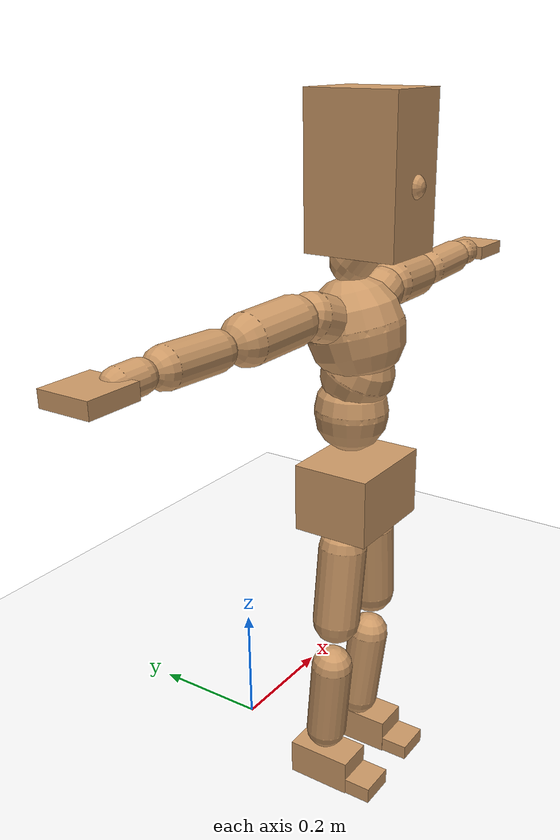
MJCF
<mujoco model="humanoid">
  <option integrator="implicitfast" />

  <visual>
    <global offwidth="1280" offheight="960" />
    <headlight active="1" ambient="0.34 0.34 0.34" diffuse="0.5 0.5 0.5" />
  </visual>

  <default>
    <joint damping="2" stiffness="2" armature="0.01" limited="true" solimplimit="0 .99 .01" />
    <geom condim="1" friction="0.7 0.005 0.0001" solimp=".99 .99 .003" solref="0.015 1" margin="0.001" rgba="0.8 0.6 .4 1" />
    <default class="smplcontact">
      <geom condim="3" friction="1. 0.005 0.0001" solref="0.015 1" solimp="0.98 0.98 0.001" priority="1" />
    </default>
    <default class="stiff_medium">
      <joint stiffness="10" />
    </default>
    <default class="stiff_medium_higher">
      <joint stiffness="50" />
    </default>
    <default class="stiff_high">
      <joint stiffness="100" />
    </default>
  </default>

  <asset>
    <texture type="skybox" builtin="gradient" rgb1="0.99 0.99 0.99" rgb2="0.608 0.828 0.892" width="100" />
    <texture builtin="flat" height="1278" mark="cross" markrgb="1 1 1" name="texgeom" random="0.01" rgb1="0.8 0.6 0.4" rgb2="0.8 0.6 0.4" type="cube" width="127" />
    <texture name="texplane" type="2d" builtin="checker" markrgb="1 1 1" rgb1="0.756 0.772 0.76" rgb2="0.6 0.6 0.6" width="100" height="100" />
    <material name="MatPlane" reflectance="0.5" texture="texplane" texrepeat="1 1" texuniform="true" />
    <material name="geom" texture="texgeom" texuniform="true" />
  </asset>

  <worldbody>
    <light name="tracking_light" pos="0 0 7" dir="0 0 -1" directional="true" cutoff="100" exponent="1" diffuse="1 1 1" specular="0.1 0.1 0.1" mode="trackcom" />
    <camera name="back" pos="0 3 2.4" xyaxes="-1 0 0 0 -1 2" mode="trackcom" />
    <camera name="side" pos="-3 0 2.4" xyaxes="0 -1 0 1 0 2" mode="trackcom" />
    <camera name="front_side" pos="-2.8 -2.8 0.8" xyaxes="0.5 -0.5 0 0.1 0.1 1" mode="trackcom" />
    <geom condim="3" name="floor" pos="0 0 0" rgba="1 1 1 1" size="100 100 .2" type="plane" material="MatPlane" />
    <body name="Pelvis" pos="-0.0018 -0.2233 0.519356" euler="90 0 0">
      <site name="Pelvis" size="0.01" />
      <freejoint name="Pelvis" />
      <geom type="box" pos="-0.0000 -0.0121 -0.0055" size="0.0773575 0.0522471 0.0600624" quat="1.0000 0.0000 0.0000 0.0000" density="3165.830099" name="Pelvis" />
      <body name="L_Hip" pos="0.038331 -0.0504094 -0.00375037">
        <joint name="L_Hip_x" type="hinge" pos="0 0 0" axis="1 0 0" stiffness="10" range="-160.0 22.92" class="stiff_medium" damping="15" />
        <joint name="L_Hip_y" type="hinge" pos="0 0 0" axis="0 1 0" stiffness="10" range="-70.0 70.0" class="stiff_medium" damping="10" />
        <joint name="L_Hip_z" type="hinge" pos="0 0 0" axis="0 0 1" stiffness="10" range="-28.65 90.0" class="stiff_medium" damping="10" />
        <geom type="capsule" density="2040.816327" fromto="0.00380552 -0.0413644 -0.000496372 0.0151118 -0.165568 -0.00198549" size="0.037448" name="L_Hip" />
        <body name="L_Knee" pos="0.0189173 -0.206932 -0.00248186">
          <joint name="L_Knee_x" type="hinge" pos="0 0 0" axis="1 0 0" range="-5.16 171.89" damping="8" />
          <joint name="L_Knee_y" type="hinge" pos="0 0 0" axis="0 1 0" range="-4.58 6.88" damping="8" />
          <joint name="L_Knee_z" type="hinge" pos="0 0 0" axis="0 0 1" range="-6.88 4.58" damping="8" />
          <geom type="capsule" density="1234.567901" fromto="-0.00148912 -0.0439014 -0.00479827 -0.00601162 -0.175606 -0.0193034" size="0.032942" name="L_Knee" />
          <body name="L_Ankle" pos="-0.00750074 -0.219507 -0.0241016">
            <joint name="L_Ankle_x" type="hinge" pos="0 0 0" axis="1 0 0" range="-45.84 45.84" class="stiff_medium" damping="6" />
            <joint name="L_Ankle_y" type="hinge" pos="0 0 0" axis="0 1 0" range="-74.48 22.92" class="stiff_medium" damping="3" />
            <joint name="L_Ankle_z" type="hinge" pos="0 0 0" axis="0 0 1" range="-4.58 4.58" class="stiff_medium" damping="6" />
            <geom type="box" pos="0.0128505 -0.0131814 0.0133469" size="0.0294103 0.0282534 0.0517573" quat="1.0000 0.0000 0.0000 0.0000" density="449.071558" name="L_Ankle" class="smplcontact" />
            <body name="L_Toe" pos="0.0145603 -0.0307751 0.0657969">
              <joint name="L_Toe_x" type="hinge" pos="0 0 0" axis="1 0 0" range="-91.67 22.92" />
              <joint name="L_Toe_y" type="hinge" pos="0 0 0" axis="0 1 0" range="-4.58 4.58" />
              <joint name="L_Toe_z" type="hinge" pos="0 0 0" axis="0 0 1" range="-4.58 4.58" />
              <geom type="box" pos="-0.00165457 0.00303339 0.0136778" size="0.0291059 0.0121782 0.0302019" quat="1.0000 0.0000 0.0000 0.0000" density="423.206892" name="L_Toe" class="smplcontact" />
            </body>
          </body>
        </body>
      </body>
      <body name="R_Hip" pos="-0.0373382 -0.049913 -0.00237156">
        <joint name="R_Hip_x" type="hinge" pos="0 0 0" axis="1 0 0" stiffness="10" range="-160.0 22.92" class="stiff_medium" damping="15" />
        <joint name="R_Hip_y" type="hinge" pos="0 0 0" axis="0 1 0" stiffness="10" range="-70.0 70.0" class="stiff_medium" damping="10" />
        <joint name="R_Hip_z" type="hinge" pos="0 0 0" axis="0 0 1" stiffness="10" range="-90.0 28.65" class="stiff_medium" damping="10" />
        <geom type="capsule" density="2040.816327" fromto="-0.00424674 -0.0421917 -0.000992745 -0.0168767 -0.168822 -0.00391583" size="0.0368999" name="R_Hip" />
        <body name="R_Knee" pos="-0.0211234 -0.211013 -0.00490857">
          <joint name="R_Knee_x" type="hinge" pos="0 0 0" axis="1 0 0" range="-5.16 171.89" damping="8" />
          <joint name="R_Knee_y" type="hinge" pos="0 0 0" axis="0 1 0" range="-6.88 4.58" damping="8" />
          <joint name="R_Knee_z" type="hinge" pos="0 0 0" axis="0 0 1" range="-4.58 6.88" damping="8" />
          <geom type="capsule" density="1234.567901" fromto="0.00176488 -0.0439565 -0.00468796 0.00694921 -0.175771 -0.0186415" size="0.032942" name="R_Knee" />
          <body name="R_Ankle" pos="0.00871409 -0.219728 -0.0233295">
            <joint name="R_Ankle_x" type="hinge" pos="0 0 0" axis="1 0 0" range="-45.84 45.84" class="stiff_medium" damping="6" />
            <joint name="R_Ankle_y" type="hinge" pos="0 0 0" axis="0 1 0" range="-22.92 74.48" class="stiff_medium" damping="3" />
            <joint name="R_Ankle_z" type="hinge" pos="0 0 0" axis="0 0 1" range="-4.58 4.58" class="stiff_medium" damping="6" />
            <geom type="box" pos="-0.0116923 -0.00959653 0.014119" size="0.0294103 0.0291059 0.0526707" quat="1.0000 0.0000 0.0000 0.0000" density="434.700981" name="R_Ankle" class="smplcontact" />
            <body name="R_Toe" pos="-0.0140087 -0.0265284 0.068003">
              <joint name="R_Toe_x" type="hinge" pos="0 0 0" axis="1 0 0" range="-91.67 22.92" />
              <joint name="R_Toe_y" type="hinge" pos="0 0 0" axis="0 1 0" range="-4.58 4.58" />
              <joint name="R_Toe_z" type="hinge" pos="0 0 0" axis="0 0 1" range="-4.58 4.58" />
              <geom type="box" pos="0.0023164 0.00248186 0.0125196" size="0.0291668 0.0131525 0.0300193" quat="1.0000 0.0000 0.0000 0.0000" density="407.384095" name="R_Toe" class="smplcontact" />
            </body>
          </body>
        </body>
      </body>
      <body name="Torso" pos="-0.00158384 0.0690555 -0.0169154">
        <joint name="Torso_x" type="hinge" pos="0 0 0" axis="1 0 0" range="-25.78 57.3" class="stiff_medium" damping="15" />
        <joint name="Torso_y" type="hinge" pos="0 0 0" axis="0 1 0" range="-57.3 57.3" class="stiff_high" damping="20" />
        <joint name="Torso_z" type="hinge" pos="0 0 0" axis="0 0 1" range="-34.38 34.38" class="stiff_high" damping="20" />
        <geom type="capsule" density="2040.816327" fromto="0.00158384 0.038519 0.000316768 0.00190061 0.0470718 0.000380122" size="0.0556482" name="Torso" />
        <body name="Spine" pos="0.00348445 0.0856541 0.00069689">
          <joint name="Spine_x" type="hinge" pos="0 0 0" axis="1 0 0" stiffness="10" range="-25.78 57.3" class="stiff_medium" damping="15" />
          <joint name="Spine_y" type="hinge" pos="0 0 0" axis="0 1 0" stiffness="10" range="-57.3 57.3" class="stiff_high" damping="8" />
          <joint name="Spine_z" type="hinge" pos="0 0 0" axis="0 0 1" stiffness="20" range="-34.38 34.38" class="stiff_high" damping="12" />
          <geom type="capsule" density="2040.816327" fromto="0.000443476 0.0150782 0.00722232 0.000506829 0.0184359 0.00886951" size="0.0546351" name="Spine" />
          <body name="Chest" pos="0.000950305 0.0335141 0.0160918">
            <joint name="Chest_x" type="hinge" pos="0 0 0" axis="1 0 0" stiffness="10" range="-25.78 57.3" class="stiff_medium" damping="15" />
            <joint name="Chest_y" type="hinge" pos="0 0 0" axis="0 1 0" stiffness="10" range="-57.3 57.3" class="stiff_high" damping="8" />
            <joint name="Chest_z" type="hinge" pos="0 0 0" axis="0 0 1" stiffness="20" range="-34.38 34.38" class="stiff_high" damping="12" />
            <geom type="capsule" density="2040.816327" fromto="-0.000570183 0.0432072 -0.0109602 -0.000633536 0.0527736 -0.013431" size="0.0725091" name="Chest" />
            <body name="Neck" pos="-0.0017739 0.135513 -0.0271787">
              <joint name="Neck_x" type="hinge" pos="0 0 0" axis="1 0 0" range="-28.65 57.3" class="stiff_medium_higher" damping="10" />
              <joint name="Neck_y" type="hinge" pos="0 0 0" axis="0 1 0" range="-40.11 40.11" class="stiff_medium_higher" damping="10" />
              <joint name="Neck_z" type="hinge" pos="0 0 0" axis="0 0 1" range="-40.11 40.11" class="stiff_medium_higher" damping="10" />
              <geom type="capsule" density="1000" fromto="0.000633536 0.00823597 0.00652543 0.0025975 0.0329439 0.0260383" size="0.0315509" name="Neck" />
              <body name="Head" pos="0.00441481 0.0551851 0.0435538">
                <joint name="Head_x" type="hinge" pos="0 0 0" axis="1 0 0" range="-28.65 57.3" class="stiff_medium_higher" damping="2" />
                <joint name="Head_y" type="hinge" pos="0 0 0" axis="0 1 0" range="-40.11 40.11" class="stiff_medium_higher" damping="2" />
                <joint name="Head_z" type="hinge" pos="0 0 0" axis="0 0 1" range="-40.11 40.11" class="stiff_medium_higher" damping="2" />
                <geom type="box" pos="-0.0035658 0.0743725 -0.00984841" size="0.0555297 0.105745 0.0696412" quat="1.0000 0.0000 0.0000 0.0000" density="1018.069894" name="Head" />
                <geom type="capsule" name="nose" size="0.0183266 0.00916331" pos="0 0.0594301 0.0424501" quat="1 0 0 0" mass="0" contype="0" conaffinity="0" />
              </body>
            </body>
            <body name="L_Thorax" pos="0.0460261 0.0710835 -0.0199174">
              <joint name="L_Thorax_x" type="hinge" pos="0 0 0" axis="1 0 0" range="-10.89 4.58" class="stiff_medium_higher" damping="20" />
              <joint name="L_Thorax_y" type="hinge" pos="0 0 0" axis="0 1 0" range="-28.65 17.19" class="stiff_medium_higher" damping="20" />
              <joint name="L_Thorax_z" type="hinge" pos="0 0 0" axis="0 0 1" range="-31.51 40.11" class="stiff_medium_higher" damping="20" />
              <geom type="capsule" density="1000" fromto="0.0106304 0.00356294 -0.00105136 0.0425216 0.0142517 -0.00414702" size="0.0351553" name="L_Thorax" />
              <body name="L_Shoulder" pos="0.053152 0.0178147 -0.00519838">
                <joint name="L_Shoulder_x" type="hinge" pos="0 0 0" axis="1 0 0" range="-97.4 97.4" class="stiff_medium" damping="6" />
                <joint name="L_Shoulder_y" type="hinge" pos="0 0 0" axis="0 1 0" range="-108.86 80.21" class="stiff_medium" damping="6" />
                <joint name="L_Shoulder_z" type="hinge" pos="0 0 0" axis="0 0 1" range="-97.4 85.94" class="stiff_medium" damping="6" />
                <geom type="capsule" density="1000" fromto="0.0303142 -0.00151863 -0.00321248 0.121315 -0.0059577 -0.0128499" size="0.0348854" name="L_Shoulder" />
                <body name="L_Elbow" pos="0.151629 -0.00747632 -0.0160624">
                  <joint name="L_Elbow_x" type="hinge" pos="0 0 0" axis="1 0 0" range="-17.19 4.58" damping="5" />
                  <joint name="L_Elbow_y" type="hinge" pos="0 0 0" axis="0 1 0" range="-180.0 17.19" damping="5" />
                  <joint name="L_Elbow_z" type="hinge" pos="0 0 0" axis="0 0 1" range="-100.84 4.58" damping="5" />
                  <geom type="capsule" density="1000" fromto="0.0290876 0.00105136 -0.000116818 0.116467 0.00420543 -0.000525679" size="0.027328" name="L_Elbow" />
                  <body name="L_Wrist" pos="0.145555 0.00525679 -0.000700905">
                    <joint name="L_Wrist_x" type="hinge" pos="0 0 0" axis="1 0 0" range="-180.0 22.92" />
                    <joint name="L_Wrist_y" type="hinge" pos="0 0 0" axis="0 1 0" range="-17.19 17.19" />
                    <joint name="L_Wrist_z" type="hinge" pos="0 0 0" axis="0 0 1" range="-22.92 22.92" />
                    <geom type="capsule" density="1000" fromto="0.00981268 -0.000934541 -0.00175226 0.0392507 -0.00379657 -0.00700905" size="0.0214576" name="L_Wrist" class="smplcontact" />
                    <body name="L_Hand" pos="0.0490634 -0.00478952 -0.00870291">
                      <joint name="L_Hand_x" type="hinge" pos="0 0 0" axis="1 0 0" range="-17.19 17.19" />
                      <joint name="L_Hand_y" type="hinge" pos="0 0 0" axis="0 1 0" range="-51.57 51.57" />
                      <joint name="L_Hand_z" type="hinge" pos="0 0 0" axis="0 0 1" range="-91.67 91.67" />
                      <geom type="box" pos="0.0287955 0.000584088 -0.00338771" size="0.0394738 0.0106613 0.0363024" quat="1.0000 0.0000 0.0000 0.0000" density="400.552564" name="L_Hand" class="smplcontact" />
                    </body>
                  </body>
                </body>
              </body>
            </body>
            <body name="R_Thorax" pos="-0.0477784 0.0693896 -0.0225458">
              <joint name="R_Thorax_x" type="hinge" pos="0 0 0" axis="1 0 0" range="-10.89 4.58" class="stiff_medium_higher" damping="20" />
              <joint name="R_Thorax_y" type="hinge" pos="0 0 0" axis="0 1 0" range="-17.19 28.65" class="stiff_medium_higher" damping="20" />
              <joint name="R_Thorax_z" type="hinge" pos="0 0 0" axis="0 0 1" range="-40.11 31.51" class="stiff_medium_higher" damping="20" />
              <geom type="capsule" density="1000" fromto="-0.0112145 0.00379657 -0.00105136 -0.0448579 0.0151863 -0.00426384" size="0.0344805" name="R_Thorax" />
              <body name="R_Shoulder" pos="-0.0560724 0.0190413 -0.0053152">
                <joint name="R_Shoulder_x" type="hinge" pos="0 0 0" axis="1 0 0" range="-97.4 97.4" class="stiff_medium" damping="6" />
                <joint name="R_Shoulder_y" type="hinge" pos="0 0 0" axis="0 1 0" range="-80.21 108.86" class="stiff_medium" damping="6" />
                <joint name="R_Shoulder_z" type="hinge" pos="0 0 0" axis="0 0 1" range="-85.94 97.4" class="stiff_medium" damping="6" />
                <geom type="capsule" density="1000" fromto="-0.0296133 -0.00157704 -0.00251158 -0.11857 -0.00624974 -0.0099879" size="0.0358301" name="R_Shoulder" />
                <body name="R_Elbow" pos="-0.148183 -0.00776837 -0.0124995">
                  <joint name="R_Elbow_x" type="hinge" pos="0 0 0" axis="1 0 0" range="-17.19 4.58" damping="5" />
                  <joint name="R_Elbow_y" type="hinge" pos="0 0 0" axis="0 1 0" range="-17.19 180.0" damping="5" />
                  <joint name="R_Elbow_z" type="hinge" pos="0 0 0" axis="0 0 1" range="-4.58 100.84" damping="5" />
                  <geom type="capsule" density="1000" fromto="-0.0298469 0.000934541 -0.000642497 -0.119271 0.00362134 -0.00256999" size="0.0275305" name="R_Elbow" />
                  <body name="R_Wrist" pos="-0.149118 0.00455589 -0.00327089">
                    <joint name="R_Wrist_x" type="hinge" pos="0 0 0" axis="1 0 0" range="-180.0 22.92" />
                    <joint name="R_Wrist_y" type="hinge" pos="0 0 0" axis="0 1 0" range="-17.19 17.19" />
                    <joint name="R_Wrist_z" type="hinge" pos="0 0 0" axis="0 0 1" range="-22.92 22.92" />
                    <geom type="capsule" density="1000" fromto="-0.00987109 -0.000700905 -0.00122658 -0.0395427 -0.00286203 -0.00484793" size="0.0219974" name="R_Wrist" class="smplcontact" />
                    <body name="R_Hand" pos="-0.0494138 -0.00356294 -0.00601611">
                      <joint name="R_Hand_x" type="hinge" pos="0 0 0" axis="1 0 0" range="-17.19 17.19" />
                      <joint name="R_Hand_y" type="hinge" pos="0 0 0" axis="0 1 0" range="-51.57 51.57" />
                      <joint name="R_Hand_z" type="hinge" pos="0 0 0" axis="0 0 1" range="-91.67 91.67" />
                      <geom type="box" pos="-0.0269849 -0.000525679 -0.00461429" size="0.0383942 0.0110662 0.0368422" quat="1.0000 0.0000 0.0000 0.0000" density="403.679611" name="R_Hand" class="smplcontact" />
                    </body>
                  </body>
                </body>
              </body>
            </body>
          </body>
        </body>
      </body>
    </body>
  </worldbody>
  <actuator>
    <general name="L_Hip_x" joint="L_Hip_x" biastype="affine" gainprm="287.33006409732246" biasprm="-215.3247604770444 -180 -2.0" ctrllimited="true" ctrlrange="-1 1" forcerange="-360 360" />
    <general name="L_Hip_y" joint="L_Hip_y" biastype="affine" gainprm="219.9114857512855" biasprm="0.0 -180 -2.0" ctrllimited="true" ctrlrange="-1 1" forcerange="-360 360" />
    <general name="L_Hip_z" joint="L_Hip_z" biastype="affine" gainprm="186.3749841742145" biasprm="96.3683546488669 -180 -2.0" ctrllimited="true" ctrlrange="-1 1" forcerange="-360 360" />
    <general name="L_Knee_x" joint="L_Knee_x" biastype="affine" gainprm="278.10948965903646" biasprm="261.8988715665131 -180 -2.0" ctrllimited="true" ctrlrange="-1 1" forcerange="-360 360" />
    <general name="L_Knee_y" joint="L_Knee_y" biastype="affine" gainprm="18.001325905069514" biasprm="3.612831551628262 -180 -2.0" ctrllimited="true" ctrlrange="-1 1" forcerange="-360 360" />
    <general name="L_Knee_z" joint="L_Knee_z" biastype="affine" gainprm="18.001325905069514" biasprm="-3.612831551628262 -180 -2.0" ctrllimited="true" ctrlrange="-1 1" forcerange="-360 360" />
    <general name="L_Ankle_x" joint="L_Ankle_x" biastype="affine" gainprm="72.00530362027807" biasprm="0.0 -90 -2.0" ctrllimited="true" ctrlrange="-1 1" forcerange="-180 180" />
    <general name="L_Ankle_y" joint="L_Ankle_y" biastype="affine" gainprm="76.49778111491148" biasprm="-40.49512930477244 -90 -2.0" ctrllimited="true" ctrlrange="-1 1" forcerange="-180 180" />
    <general name="L_Ankle_z" joint="L_Ankle_z" biastype="affine" gainprm="7.1942471767206255" biasprm="0.0 -90 -2.0" ctrllimited="true" ctrlrange="-1 1" forcerange="-180 180" />
    <general name="L_Toe_x" joint="L_Toe_x" biastype="affine" gainprm="71.99902043497087" biasprm="-43.19689898685965 -72 -0.8" ctrllimited="true" ctrlrange="-1 1" forcerange="-144 144" />
    <general name="L_Toe_y" joint="L_Toe_y" biastype="affine" gainprm="5.755397741376501" biasprm="0.0 -72 -0.8" ctrllimited="true" ctrlrange="-1 1" forcerange="-144 144" />
    <general name="L_Toe_z" joint="L_Toe_z" biastype="affine" gainprm="5.755397741376501" biasprm="0.0 -72 -0.8" ctrllimited="true" ctrlrange="-1 1" forcerange="-144 144" />
    <general name="R_Hip_x" joint="R_Hip_x" biastype="affine" gainprm="287.33006409732246" biasprm="-215.3247604770444 -180 -2.0" ctrllimited="true" ctrlrange="-1 1" forcerange="-360 360" />
    <general name="R_Hip_y" joint="R_Hip_y" biastype="affine" gainprm="219.9114857512855" biasprm="0.0 -180 -2.0" ctrllimited="true" ctrlrange="-1 1" forcerange="-360 360" />
    <general name="R_Hip_z" joint="R_Hip_z" biastype="affine" gainprm="186.3749841742145" biasprm="-96.3683546488669 -180 -2.0" ctrllimited="true" ctrlrange="-1 1" forcerange="-360 360" />
    <general name="R_Knee_x" joint="R_Knee_x" biastype="affine" gainprm="278.10948965903646" biasprm="261.8988715665131 -180 -2.0" ctrllimited="true" ctrlrange="-1 1" forcerange="-360 360" />
    <general name="R_Knee_y" joint="R_Knee_y" biastype="affine" gainprm="18.001325905069514" biasprm="-3.612831551628262 -180 -2.0" ctrllimited="true" ctrlrange="-1 1" forcerange="-360 360" />
    <general name="R_Knee_z" joint="R_Knee_z" biastype="affine" gainprm="18.001325905069514" biasprm="3.612831551628262 -180 -2.0" ctrllimited="true" ctrlrange="-1 1" forcerange="-360 360" />
    <general name="R_Ankle_x" joint="R_Ankle_x" biastype="affine" gainprm="72.00530362027807" biasprm="0.0 -90 -2.0" ctrllimited="true" ctrlrange="-1 1" forcerange="-180 180" />
    <general name="R_Ankle_y" joint="R_Ankle_y" biastype="affine" gainprm="76.49778111491148" biasprm="40.49512930477244 -90 -2.0" ctrllimited="true" ctrlrange="-1 1" forcerange="-180 180" />
    <general name="R_Ankle_z" joint="R_Ankle_z" biastype="affine" gainprm="7.1942471767206255" biasprm="0.0 -90 -2.0" ctrllimited="true" ctrlrange="-1 1" forcerange="-180 180" />
    <general name="R_Toe_x" joint="R_Toe_x" biastype="affine" gainprm="71.99902043497087" biasprm="-43.19689898685965 -72 -0.8" ctrllimited="true" ctrlrange="-1 1" forcerange="-144 144" />
    <general name="R_Toe_y" joint="R_Toe_y" biastype="affine" gainprm="5.755397741376501" biasprm="0.0 -72 -0.8" ctrllimited="true" ctrlrange="-1 1" forcerange="-144 144" />
    <general name="R_Toe_z" joint="R_Toe_z" biastype="affine" gainprm="5.755397741376501" biasprm="0.0 -72 -0.8" ctrllimited="true" ctrlrange="-1 1" forcerange="-144 144" />
    <general name="Torso_x" joint="Torso_x" biastype="affine" gainprm="174.00234510682668" biasprm="66.0153336274335 -240 -4.0" ctrllimited="true" ctrlrange="-1 1" forcerange="-360 360" />
    <general name="Torso_y" joint="Torso_y" biastype="affine" gainprm="240.0176787342602" biasprm="0.0 -240 -4.0" ctrllimited="true" ctrlrange="-1 1" forcerange="-360 360" />
    <general name="Torso_z" joint="Torso_z" biastype="affine" gainprm="144.01060724055614" biasprm="0.0 -240 -4.0" ctrllimited="true" ctrlrange="-1 1" forcerange="-360 360" />
    <general name="Spine_x" joint="Spine_x" biastype="affine" gainprm="174.00234510682668" biasprm="66.0153336274335 -240 -4.0" ctrllimited="true" ctrlrange="-1 1" forcerange="-360 360" />
    <general name="Spine_y" joint="Spine_y" biastype="affine" gainprm="240.0176787342602" biasprm="0.0 -240 -4.0" ctrllimited="true" ctrlrange="-1 1" forcerange="-360 360" />
    <general name="Spine_z" joint="Spine_z" biastype="affine" gainprm="144.01060724055614" biasprm="0.0 -240 -4.0" ctrllimited="true" ctrlrange="-1 1" forcerange="-360 360" />
    <general name="Chest_x" joint="Chest_x" biastype="affine" gainprm="174.00234510682668" biasprm="66.0153336274335 -240 -4.0" ctrllimited="true" ctrlrange="-1 1" forcerange="-360 360" />
    <general name="Chest_y" joint="Chest_y" biastype="affine" gainprm="240.0176787342602" biasprm="0.0 -240 -4.0" ctrllimited="true" ctrlrange="-1 1" forcerange="-360 360" />
    <general name="Chest_z" joint="Chest_z" biastype="affine" gainprm="144.01060724055614" biasprm="0.0 -240 -4.0" ctrllimited="true" ctrlrange="-1 1" forcerange="-360 360" />
    <general name="Neck_x" joint="Neck_x" biastype="affine" gainprm="27.00198885760427" biasprm="9.000662952534757 -36 -0.8" ctrllimited="true" ctrlrange="-1 1" forcerange="-72 72" />
    <general name="Neck_y" joint="Neck_y" biastype="affine" gainprm="25.20185626709732" biasprm="0.0 -36 -0.8" ctrllimited="true" ctrlrange="-1 1" forcerange="-72 72" />
    <general name="Neck_z" joint="Neck_z" biastype="affine" gainprm="25.20185626709732" biasprm="0.0 -36 -0.8" ctrllimited="true" ctrlrange="-1 1" forcerange="-72 72" />
    <general name="Head_x" joint="Head_x" biastype="affine" gainprm="18.001325905069514" biasprm="6.000441968356505 -24 -0.8" ctrllimited="true" ctrlrange="-1 1" forcerange="-48 48" />
    <general name="Head_y" joint="Head_y" biastype="affine" gainprm="16.801237511398213" biasprm="0.0 -24 -0.8" ctrllimited="true" ctrlrange="-1 1" forcerange="-48 48" />
    <general name="Head_z" joint="Head_z" biastype="affine" gainprm="16.801237511398213" biasprm="0.0 -24 -0.8" ctrllimited="true" ctrlrange="-1 1" forcerange="-48 48" />
    <general name="L_Thorax_x" joint="L_Thorax_x" biastype="affine" gainprm="16.200146117011364" biasprm="-6.6078165480505335 -120 -1.6" ctrllimited="true" ctrlrange="-1 1" forcerange="-240 240" />
    <general name="L_Thorax_y" joint="L_Thorax_y" biastype="affine" gainprm="48.00353574685204" biasprm="-12.00088393671301 -120 -1.6" ctrllimited="true" ctrlrange="-1 1" forcerange="-240 240" />
    <general name="L_Thorax_z" joint="L_Thorax_z" biastype="affine" gainprm="75.00028861670033" biasprm="9.00589894029074 -120 -1.6" ctrllimited="true" ctrlrange="-1 1" forcerange="-240 240" />
    <general name="L_Shoulder_x" joint="L_Shoulder_x" biastype="affine" gainprm="81.5976331892389" biasprm="0.0 -48 -1.6" ctrllimited="true" ctrlrange="-1 1" forcerange="-96 96" />
    <general name="L_Shoulder_y" joint="L_Shoulder_y" biastype="affine" gainprm="79.19745640189629" biasprm="-12.00088393671301 -48 -1.6" ctrllimited="true" ctrlrange="-1 1" forcerange="-96 96" />
    <general name="L_Shoulder_z" joint="L_Shoulder_z" biastype="affine" gainprm="76.79727961455369" biasprm="-4.800353574685214 -48 -1.6" ctrllimited="true" ctrlrange="-1 1" forcerange="-96 96" />
    <general name="L_Elbow_x" joint="L_Elbow_x" biastype="affine" gainprm="13.67849441372996" biasprm="-7.923096672353461 -72 -0.8" ctrllimited="true" ctrlrange="-1 1" forcerange="-144 144" />
    <general name="L_Elbow_y" joint="L_Elbow_y" biastype="affine" gainprm="123.89813107227425" biasprm="-102.29653998619085 -72 -0.8" ctrllimited="true" ctrlrange="-1 1" forcerange="-144 144" />
    <general name="L_Elbow_z" joint="L_Elbow_z" biastype="affine" gainprm="66.23733950828719" biasprm="-60.4819417669107 -72 -0.8" ctrllimited="true" ctrlrange="-1 1" forcerange="-144 144" />
    <general name="L_Wrist_x" joint="L_Wrist_x" biastype="affine" gainprm="21.24973270888136" biasprm="-16.449379134196157 -12 -0.8" ctrllimited="true" ctrlrange="-1 1" forcerange="-24 24" />
    <general name="L_Wrist_y" joint="L_Wrist_y" biastype="affine" gainprm="3.6002651810139037" biasprm="0.0 -12 -0.8" ctrllimited="true" ctrlrange="-1 1" forcerange="-24 24" />
    <general name="L_Wrist_z" joint="L_Wrist_z" biastype="affine" gainprm="4.800353574685205" biasprm="0.0 -12 -0.8" ctrllimited="true" ctrlrange="-1 1" forcerange="-24 24" />
    <general name="L_Hand_x" joint="L_Hand_x" biastype="affine" gainprm="3.6002651810139037" biasprm="0.0 -12 -0.8" ctrllimited="true" ctrlrange="-1 1" forcerange="-24 24" />
    <general name="L_Hand_y" joint="L_Hand_y" biastype="affine" gainprm="10.800795543041708" biasprm="0.0 -12 -0.8" ctrllimited="true" ctrlrange="-1 1" forcerange="-24 24" />
    <general name="L_Hand_z" joint="L_Hand_z" biastype="affine" gainprm="19.199319903638422" biasprm="0.0 -12 -0.8" ctrllimited="true" ctrlrange="-1 1" forcerange="-24 24" />
    <general name="R_Thorax_x" joint="R_Thorax_x" biastype="affine" gainprm="16.200146117011364" biasprm="-6.6078165480505335 -120 -1.6" ctrllimited="true" ctrlrange="-1 1" forcerange="-240 240" />
    <general name="R_Thorax_y" joint="R_Thorax_y" biastype="affine" gainprm="48.00353574685204" biasprm="12.000883936713002 -120 -1.6" ctrllimited="true" ctrlrange="-1 1" forcerange="-240 240" />
    <general name="R_Thorax_z" joint="R_Thorax_z" biastype="affine" gainprm="75.00028861670033" biasprm="-9.00589894029074 -120 -1.6" ctrllimited="true" ctrlrange="-1 1" forcerange="-240 240" />
    <general name="R_Shoulder_x" joint="R_Shoulder_x" biastype="affine" gainprm="81.5976331892389" biasprm="0.0 -48 -1.6" ctrllimited="true" ctrlrange="-1 1" forcerange="-96 96" />
    <general name="R_Shoulder_y" joint="R_Shoulder_y" biastype="affine" gainprm="79.19745640189629" biasprm="12.00088393671301 -48 -1.6" ctrllimited="true" ctrlrange="-1 1" forcerange="-96 96" />
    <general name="R_Shoulder_z" joint="R_Shoulder_z" biastype="affine" gainprm="76.79727961455369" biasprm="4.800353574685204 -48 -1.6" ctrllimited="true" ctrlrange="-1 1" forcerange="-96 96" />
    <general name="R_Elbow_x" joint="R_Elbow_x" biastype="affine" gainprm="13.67849441372996" biasprm="-7.923096672353461 -72 -0.8" ctrllimited="true" ctrlrange="-1 1" forcerange="-144 144" />
    <general name="R_Elbow_y" joint="R_Elbow_y" biastype="affine" gainprm="123.89813107227425" biasprm="102.29653998619085 -72 -0.8" ctrllimited="true" ctrlrange="-1 1" forcerange="-144 144" />
    <general name="R_Elbow_z" joint="R_Elbow_z" biastype="affine" gainprm="66.23733950828719" biasprm="60.481941766910694 -72 -0.8" ctrllimited="true" ctrlrange="-1 1" forcerange="-144 144" />
    <general name="R_Wrist_x" joint="R_Wrist_x" biastype="affine" gainprm="21.24973270888136" biasprm="-16.449379134196157 -12 -0.8" ctrllimited="true" ctrlrange="-1 1" forcerange="-24 24" />
    <general name="R_Wrist_y" joint="R_Wrist_y" biastype="affine" gainprm="3.6002651810139037" biasprm="0.0 -12 -0.8" ctrllimited="true" ctrlrange="-1 1" forcerange="-24 24" />
    <general name="R_Wrist_z" joint="R_Wrist_z" biastype="affine" gainprm="4.800353574685205" biasprm="0.0 -12 -0.8" ctrllimited="true" ctrlrange="-1 1" forcerange="-24 24" />
    <general name="R_Hand_x" joint="R_Hand_x" biastype="affine" gainprm="3.6002651810139037" biasprm="0.0 -12 -0.8" ctrllimited="true" ctrlrange="-1 1" forcerange="-24 24" />
    <general name="R_Hand_y" joint="R_Hand_y" biastype="affine" gainprm="10.800795543041708" biasprm="0.0 -12 -0.8" ctrllimited="true" ctrlrange="-1 1" forcerange="-24 24" />
    <general name="R_Hand_z" joint="R_Hand_z" biastype="affine" gainprm="19.199319903638422" biasprm="0.0 -12 -0.8" ctrllimited="true" ctrlrange="-1 1" forcerange="-24 24" />
  </actuator>
  <contact>
    <exclude body1="Torso" body2="Chest" />
    <exclude body1="Head" body2="Chest" />
    <exclude body1="R_Knee" body2="R_Toe" />
    <exclude body1="R_Knee" body2="L_Ankle" />
    <exclude body1="R_Knee" body2="L_Toe" />
    <exclude body1="L_Knee" body2="L_Toe" />
    <exclude body1="L_Knee" body2="R_Ankle" />
    <exclude body1="L_Knee" body2="R_Toe" />
    <exclude body1="L_Shoulder" body2="Chest" />
    <exclude body1="R_Shoulder" body2="Chest" />
  </contact>
  <sensor>
    <framelinvel name="sensor_Pelvis_framelinvel" objtype="xbody" objname="Pelvis" />
    <framelinvel name="sensor_L_Hip_framelinvel" objtype="xbody" objname="L_Hip" />
    <framelinvel name="sensor_L_Knee_framelinvel" objtype="xbody" objname="L_Knee" />
    <framelinvel name="sensor_L_Ankle_framelinvel" objtype="xbody" objname="L_Ankle" />
    <framelinvel name="sensor_L_Toe_framelinvel" objtype="xbody" objname="L_Toe" />
    <framelinvel name="sensor_R_Hip_framelinvel" objtype="xbody" objname="R_Hip" />
    <framelinvel name="sensor_R_Knee_framelinvel" objtype="xbody" objname="R_Knee" />
    <framelinvel name="sensor_R_Ankle_framelinvel" objtype="xbody" objname="R_Ankle" />
    <framelinvel name="sensor_R_Toe_framelinvel" objtype="xbody" objname="R_Toe" />
    <framelinvel name="sensor_Torso_framelinvel" objtype="xbody" objname="Torso" />
    <framelinvel name="sensor_Spine_framelinvel" objtype="xbody" objname="Spine" />
    <framelinvel name="sensor_Chest_framelinvel" objtype="xbody" objname="Chest" />
    <framelinvel name="sensor_Neck_framelinvel" objtype="xbody" objname="Neck" />
    <framelinvel name="sensor_Head_framelinvel" objtype="xbody" objname="Head" />
    <framelinvel name="sensor_L_Thorax_framelinvel" objtype="xbody" objname="L_Thorax" />
    <framelinvel name="sensor_L_Shoulder_framelinvel" objtype="xbody" objname="L_Shoulder" />
    <framelinvel name="sensor_L_Elbow_framelinvel" objtype="xbody" objname="L_Elbow" />
    <framelinvel name="sensor_L_Wrist_framelinvel" objtype="xbody" objname="L_Wrist" />
    <framelinvel name="sensor_L_Hand_framelinvel" objtype="xbody" objname="L_Hand" />
    <framelinvel name="sensor_R_Thorax_framelinvel" objtype="xbody" objname="R_Thorax" />
    <framelinvel name="sensor_R_Shoulder_framelinvel" objtype="xbody" objname="R_Shoulder" />
    <framelinvel name="sensor_R_Elbow_framelinvel" objtype="xbody" objname="R_Elbow" />
    <framelinvel name="sensor_R_Wrist_framelinvel" objtype="xbody" objname="R_Wrist" />
    <framelinvel name="sensor_R_Hand_framelinvel" objtype="xbody" objname="R_Hand" />
    <frameangvel name="sensor_Pelvis_frameangvel" objtype="xbody" objname="Pelvis" />
    <frameangvel name="sensor_L_Hip_frameangvel" objtype="xbody" objname="L_Hip" />
    <frameangvel name="sensor_L_Knee_frameangvel" objtype="xbody" objname="L_Knee" />
    <frameangvel name="sensor_L_Ankle_frameangvel" objtype="xbody" objname="L_Ankle" />
    <frameangvel name="sensor_L_Toe_frameangvel" objtype="xbody" objname="L_Toe" />
    <frameangvel name="sensor_R_Hip_frameangvel" objtype="xbody" objname="R_Hip" />
    <frameangvel name="sensor_R_Knee_frameangvel" objtype="xbody" objname="R_Knee" />
    <frameangvel name="sensor_R_Ankle_frameangvel" objtype="xbody" objname="R_Ankle" />
    <frameangvel name="sensor_R_Toe_frameangvel" objtype="xbody" objname="R_Toe" />
    <frameangvel name="sensor_Torso_frameangvel" objtype="xbody" objname="Torso" />
    <frameangvel name="sensor_Spine_frameangvel" objtype="xbody" objname="Spine" />
    <frameangvel name="sensor_Chest_frameangvel" objtype="xbody" objname="Chest" />
    <frameangvel name="sensor_Neck_frameangvel" objtype="xbody" objname="Neck" />
    <frameangvel name="sensor_Head_frameangvel" objtype="xbody" objname="Head" />
    <frameangvel name="sensor_L_Thorax_frameangvel" objtype="xbody" objname="L_Thorax" />
    <frameangvel name="sensor_L_Shoulder_frameangvel" objtype="xbody" objname="L_Shoulder" />
    <frameangvel name="sensor_L_Elbow_frameangvel" objtype="xbody" objname="L_Elbow" />
    <frameangvel name="sensor_L_Wrist_frameangvel" objtype="xbody" objname="L_Wrist" />
    <frameangvel name="sensor_L_Hand_frameangvel" objtype="xbody" objname="L_Hand" />
    <frameangvel name="sensor_R_Thorax_frameangvel" objtype="xbody" objname="R_Thorax" />
    <frameangvel name="sensor_R_Shoulder_frameangvel" objtype="xbody" objname="R_Shoulder" />
    <frameangvel name="sensor_R_Elbow_frameangvel" objtype="xbody" objname="R_Elbow" />
    <frameangvel name="sensor_R_Wrist_frameangvel" objtype="xbody" objname="R_Wrist" />
    <frameangvel name="sensor_R_Hand_frameangvel" objtype="xbody" objname="R_Hand" />
    <subtreelinvel name="Chest_subtreelinvel" body="Chest" />
    <gyro name="Pelvis_gyro" site="Pelvis" />
  </sensor>
</mujoco>
